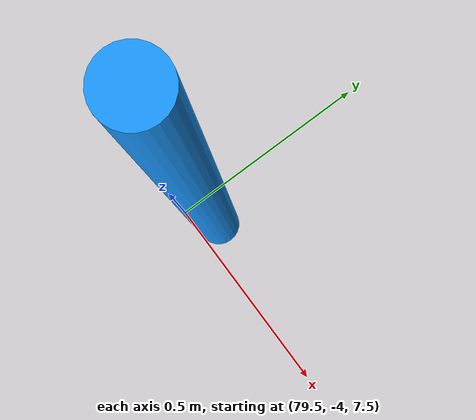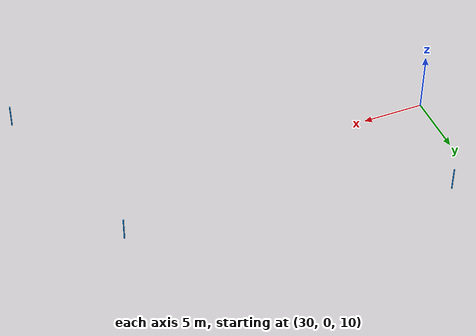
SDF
<sdf version="1.9">
 <world name="jezero_upper_rocks_k05_full">
  <physics name="1ms" type="ignored">
   <max_step_size>0.001</max_step_size>
   <real_time_factor>1</real_time_factor>
  </physics>
  <gravity>0 0 -3.721</gravity>
  <plugin filename="gz-sim-physics-system" name="gz::sim::systems::Physics"/>
  <plugin filename="gz-sim-user-commands-system" name="gz::sim::systems::UserCommands"/>
  <plugin filename="gz-sim-scene-broadcaster-system" name="gz::sim::systems::SceneBroadcaster"/>
  <scene><ambient>0.5 0.4 0.35 1</ambient><background>0.85 0.65 0.50 1</background><grid>false</grid></scene>
  <light type="directional" name="sun">
   <pose>0 0 100 0 0 0</pose>
   <diffuse>0.9 0.85 0.8 1</diffuse>
   <direction>-0.5 0.3 -0.8</direction>
  </light>
  <model name="waypoint_sol770">
   <static>true</static>
   <pose>79.57 -3.95 8.49 0 0 0</pose>
   <link name="link">
    <visual name="v">
     <geometry><cylinder><radius>0.05</radius><length>2.0</length></cylinder></geometry>
     <material><ambient>0.1 0.6 1 1</ambient><diffuse>0.1 0.6 1 1</diffuse></material>
    </visual>
   </link>
  </model>
  <model name="waypoint_sol784">
   <static>true</static>
   <pose>60.95 -11.83 9.62 0 0 0</pose>
   <link name="link">
    <visual name="v">
     <geometry><cylinder><radius>0.05</radius><length>2.0</length></cylinder></geometry>
     <material><ambient>0.1 0.6 1 1</ambient><diffuse>0.1 0.6 1 1</diffuse></material>
    </visual>
   </link>
  </model>
  <model name="waypoint_sol816">
   <static>true</static>
   <pose>56.66 3.32 9.49 0 0 0</pose>
   <link name="link">
    <visual name="v">
     <geometry><cylinder><radius>0.05</radius><length>2.0</length></cylinder></geometry>
     <material><ambient>0.1 0.6 1 1</ambient><diffuse>0.1 0.6 1 1</diffuse></material>
    </visual>
   </link>
  </model>
  <model name="waypoint_sol818">
   <static>true</static>
   <pose>32.27 9.43 11.14 0 0 0</pose>
   <link name="link">
    <visual name="v">
     <geometry><cylinder><radius>0.05</radius><length>2.0</length></cylinder></geometry>
     <material><ambient>0.1 0.6 1 1</ambient><diffuse>0.1 0.6 1 1</diffuse></material>
    </visual>
   </link>
  </model>
  <model name="waypoint_sol836">
   <static>true</static>
   <pose>-57.44 -28.86 15.99 0 0 0</pose>
   <link name="link">
    <visual name="v">
     <geometry><cylinder><radius>0.05</radius><length>2.0</length></cylinder></geometry>
     <material><ambient>0.1 0.6 1 1</ambient><diffuse>0.1 0.6 1 1</diffuse></material>
    </visual>
   </link>
  </model>
 </world>
</sdf>
